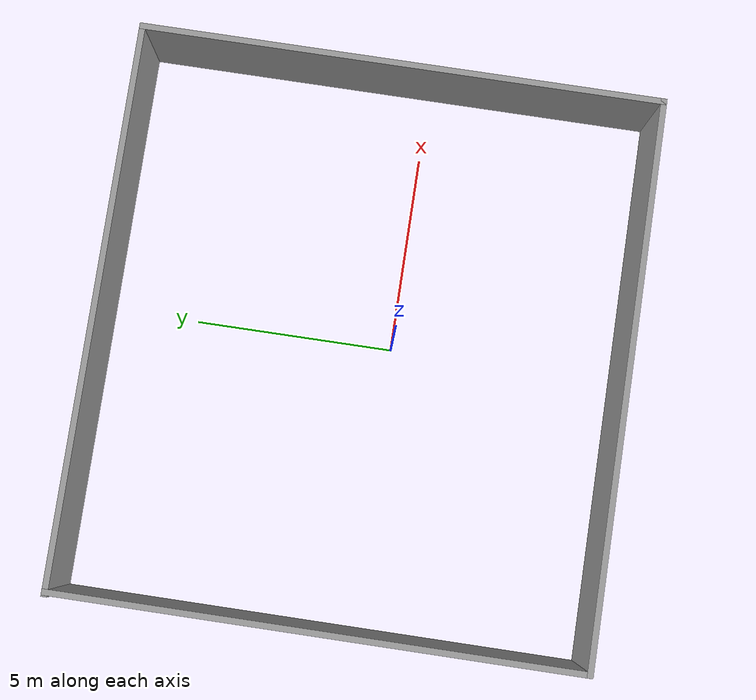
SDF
<?xml version='1.0'?>
<sdf version='1.6'>
  <model name='Room'>
    <pose frame=''>-0.200166 0.768167 0 0 -0 0</pose>
    <link name='Wall_1'>
      <collision name='Wall_1_Collision'>
        <geometry>
          <box>
            <size>13 0.15 2.5</size>
          </box>
        </geometry>
        <pose frame=''>0 0 1.25 0 -0 0</pose>
      </collision>
      <visual name='Wall_1_Visual'>
        <pose frame=''>0 0 1.25 0 -0 0</pose>
        <geometry>
          <box>
            <size>13 0.15 2.5</size>
          </box>
        </geometry>
        <material>
          <script>
            <uri>file://media/materials/scripts/gazebo.material</uri>
            <name>Gazebo/Grey</name>
          </script>
          <ambient>0.333333 0.341176 0.32549 1</ambient>
        </material>
        <meta>
          <layer>0</layer>
        </meta>
      </visual>
      <pose frame=''>-6.88982 -0 0 0 -0 1.5708</pose>
    </link>
    <link name='Wall_2'>
      <collision name='Wall_2_Collision'>
        <geometry>
          <box>
            <size>14 0.15 2.5</size>
          </box>
        </geometry>
        <pose frame=''>0 0 1.25 0 -0 0</pose>
      </collision>
      <visual name='Wall_2_Visual'>
        <pose frame=''>0 0 1.25 0 -0 0</pose>
        <geometry>
          <box>
            <size>14 0.15 2.5</size>
          </box>
        </geometry>
        <material>
          <script>
            <uri>file://media/materials/scripts/gazebo.material</uri>
            <name>Gazebo/Grey</name>
          </script>
          <ambient>0.333333 0.341176 0.32549 1</ambient>
        </material>
        <meta>
          <layer>0</layer>
        </meta>
      </visual>
      <pose frame=''>-0 6.425 0 0 -0 0</pose>
    </link>
    <link name='Wall_4'>
      <collision name='Wall_4_Collision'>
        <geometry>
          <box>
            <size>13 0.15 2.5</size>
          </box>
        </geometry>
        <pose frame=''>0 0 1.25 0 -0 0</pose>
      </collision>
      <visual name='Wall_4_Visual'>
        <pose frame=''>0 0 1.25 0 -0 0</pose>
        <geometry>
          <box>
            <size>13 0.15 2.5</size>
          </box>
        </geometry>
        <material>
          <script>
            <uri>file://media/materials/scripts/gazebo.material</uri>
            <name>Gazebo/Grey</name>
          </script>
          <ambient>0.333333 0.341176 0.32549 1</ambient>
        </material>
        <meta>
          <layer>0</layer>
        </meta>
      </visual>
      <pose frame=''>6.925 -0 0 0 -0 -1.5708</pose>
    </link>
    <link name='Wall_5'>
      <collision name='Wall_5_Collision'>
        <geometry>
          <box>
            <size>13.9648 0.15 2.5</size>
          </box>
        </geometry>
        <pose frame=''>0 0 1.25 0 -0 0</pose>
      </collision>
      <visual name='Wall_5_Visual'>
        <pose frame=''>0 0 1.25 0 -0 0</pose>
        <geometry>
          <box>
            <size>13.9648 0.15 2.5</size>
          </box>
        </geometry>
        <material>
          <script>
            <uri>file://media/materials/scripts/gazebo.material</uri>
            <name>Gazebo/Grey</name>
          </script>
          <ambient>0.333333 0.341176 0.32549 1</ambient>
        </material>
        <meta>
          <layer>0</layer>
        </meta>
      </visual>
      <pose frame=''>0.017589 -6.425 0 0 -0 3.14159</pose>
    </link>
    <static>1</static>
  </model>
</sdf>
